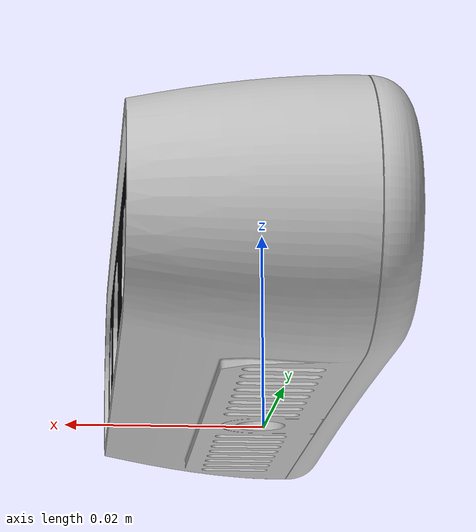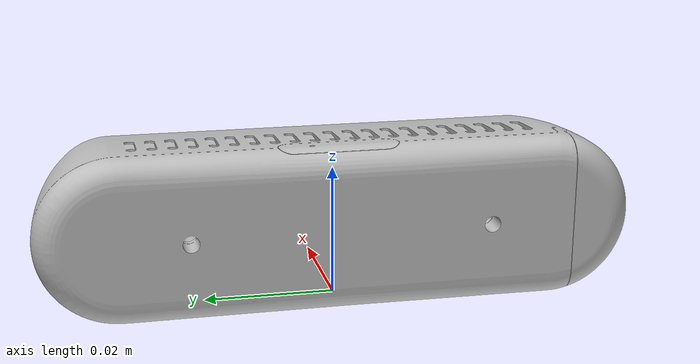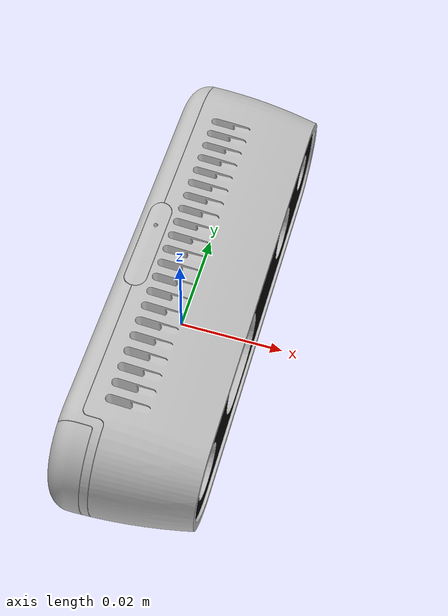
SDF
<?xml version="1.0" ?>
<sdf version="1.5">
  <model name="d435i">
    <pose>0 0 0 0 0 0</pose>
    <link name="camera_link">
      <inertial>
        <mass>0.072</mass>
          <inertia>
            <ixx>4.6928e-5</ixx>
            <ixy>4.8e-10</ixy>
            <ixz>1.89e-9</ixz>
            <iyy>6.641e-6</iyy>
            <iyz>1.5406e-7</iyz>
            <izz>4.6498e-5</izz>
          </inertia>
      </inertial>
      <collision name="collision">
        <geometry>
          <box>
            <size>0.001 0.001 0.001</size>
          </box>
        </geometry>
      </collision>
      <visual name="visual">
        <cast_shadows>false</cast_shadows>
        <geometry>
          <mesh>
            <uri>model://d435i/d435i.dae</uri>
            <scale>1.0 1.0 1.0</scale>
          </mesh>
        </geometry>
      </visual>

      <sensor name="camera" type="depth">
        <camera name="depth">
          <horizontal_fov>1.5708</horizontal_fov>
          <image>
            <width>640</width>
            <height>480</height>
            <format>R8G8B8</format>
          </image>
          <clip>
            <near>0.1</near>
            <far>300</far>
          </clip>
          <noise>
            <type>gaussian</type>
            <mean>0.0</mean>
            <stddev>0.0001</stddev>
          </noise>
        </camera>
        <always_on>1</always_on>
        <visualize>1</visualize>
        <update_rate>15</update_rate>
        <plugin name="camera_plugin" filename="libgazebo_ros_openni_kinect.so">
          <baseline>0.05</baseline>
          <alwaysOn>true</alwaysOn>
          <robotNamespace>/d435i</robotNamespace>
          <updateRate>0.0</updateRate>
          <cameraName>depth</cameraName>
          <imageTopicName>rgb_image_raw</imageTopicName>
          <cameraInfoTopicName>rgb_camera_info</cameraInfoTopicName>
          <depthImageTopicName>image_raw</depthImageTopicName>
          <depthImageCameraInfoTopicName>camera_info</depthImageCameraInfoTopicName>
          <pointCloudTopicName>pointcloud</pointCloudTopicName>
          <frameName>depth_camera_link</frameName>
          <pointCloudCutoff>0.11</pointCloudCutoff>
          <pointCloudCutoffMax>7.0</pointCloudCutoffMax>
          <distortionK1>0</distortionK1>
          <distortionK2>0</distortionK2>
          <distortionK3>0</distortionK3>
          <distortionT1>0</distortionT1>
          <distortionT2>0</distortionT2>
          <hackBaseline>0.05</hackBaseline>
        </plugin>
      </sensor>

      <sensor type="multicamera" name="stereo_camera">
        <camera name="left">
          <pose>0 0 0 0 0 0</pose>
          <horizontal_fov>1.5708</horizontal_fov>
          <image>
            <width>640</width>
            <height>480</height>
            <format>R8G8B8</format>
          </image>
          <clip>
            <near>0.05</near>
            <far>1500</far>
          </clip>
          <noise>
            <type>gaussian</type>
            <mean>0.0</mean>
            <stddev>0.0</stddev>
          </noise>
        </camera>
        <camera name="right">
          <pose>0 -0.05 0 0 0 0</pose>
          <horizontal_fov>1.5708</horizontal_fov>
          <image>
            <width>640</width>
            <height>480</height>
            <format>R8G8B8</format>
          </image>
          <clip>
            <near>0.05</near>
            <far>1500</far>
          </clip>
          <noise>
            <type>gaussian</type>
            <mean>0.0</mean>
            <stddev>0.0</stddev>
          </noise>
        </camera>
        <always_on>1</always_on>
        <visualize>1</visualize>
        <update_rate>15.0</update_rate>
        <plugin name="stereo_camera_controller" filename="libgazebo_ros_multicamera.so">
          <alwaysOn>true</alwaysOn>
          <updateRate>0.0</updateRate>
          <robotNamespace>/d435i</robotNamespace>
          <cameraName>stereo_ir</cameraName>
          <imageTopicName>image_raw</imageTopicName>
          <cameraInfoTopicName>camera_info</cameraInfoTopicName>
          <frameName>stereo_camera_link</frameName>
          <CxPrime>0.0</CxPrime>
          <Cx>0.0</Cx>
          <Cy>0.0</Cy>
          <focalLength>0.0</focalLength>
          <distortionK1>0.0</distortionK1>
          <distortionK2>0.0</distortionK2>
          <distortionK3>0.0</distortionK3>
          <distortionT1>0.0</distortionT1>
          <distortionT2>0.0</distortionT2>
          <hackBaseline>0.05</hackBaseline>
        </plugin>
      </sensor>

    </link>
  </model>
</sdf>
